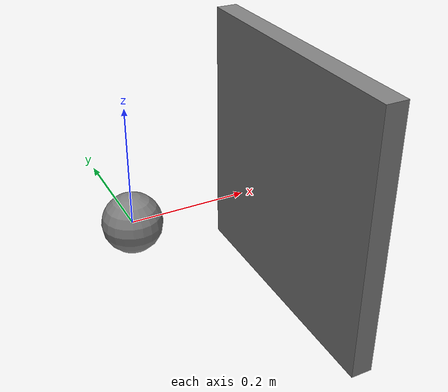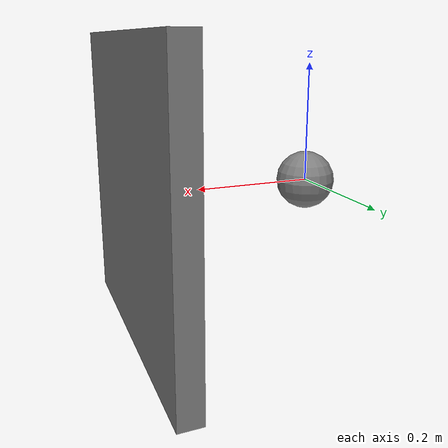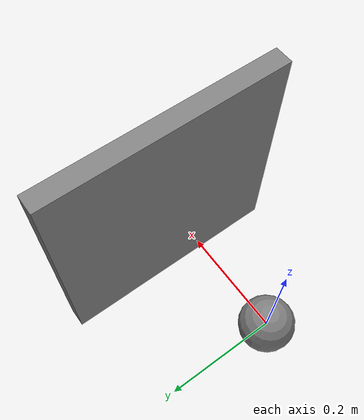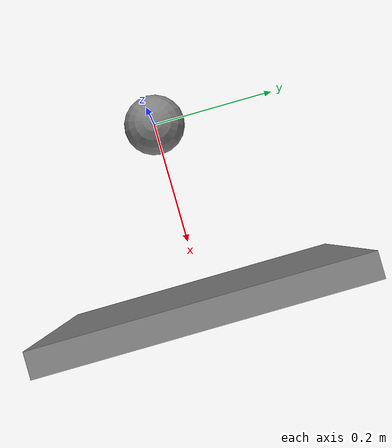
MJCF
<mujoco model="native_upgrade_peg_contact">
  <compiler angle="radian"/>
  <option timestep="0.004" gravity="0 0 0" integrator="Euler" iterations="100" tolerance="1e-10"/>
  <default>
    <geom friction="0.2 0.01 0.001" solref="0.01 1" density="500"/>
  </default>
  <worldbody>
    <geom name="wall" type="box" pos="0.30 0 0" size="0.02 0.25 0.25" density="0"/>
    <body name="peg" pos="0 0 0">
      <joint name="peg_slide" type="slide" axis="1 0 0" damping="0.2"/>
      <geom name="peg_tip" type="sphere" size="0.05" mass="0.2"/>
    </body>
  </worldbody>
  <actuator>
    <position name="peg_target" joint="peg_slide" kp="80" dampratio="1" ctrllimited="true" ctrlrange="-0.15 0.35"/>
  </actuator>
  <sensor>
    <jointpos name="peg_position" joint="peg_slide"/>
    <jointvel name="peg_velocity" joint="peg_slide"/>
  </sensor>
</mujoco>
